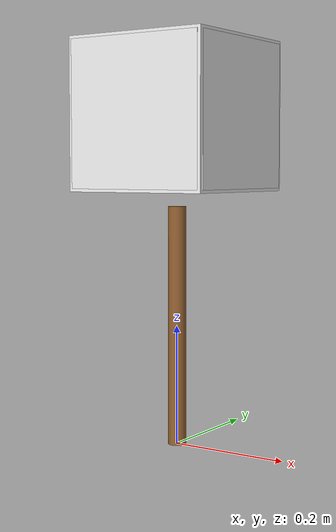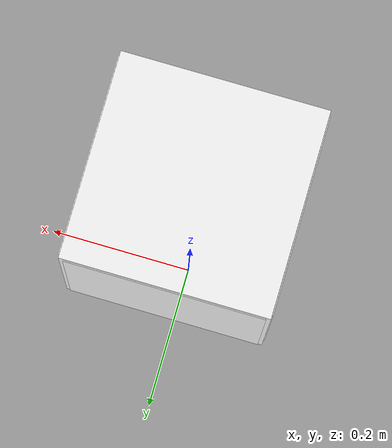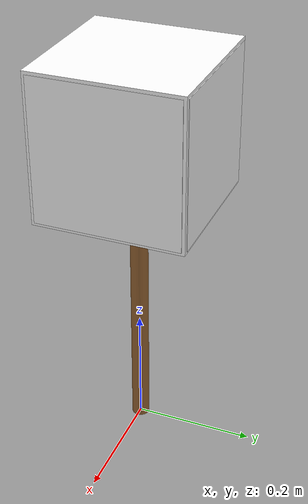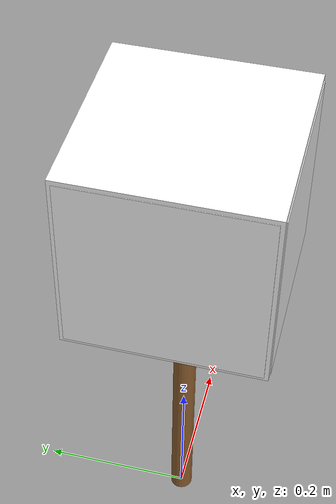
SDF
<?xml version="1.0"?>
<sdf version="1.6">
  <model name="aruco_marker_7">
    <static>true</static>
    <link name="link">

      <!-- عصاية -->
      <visual name="pole">
        <pose>0 0 0.2 0 0 0</pose>
        <geometry>
          <cylinder>
            <radius>0.015</radius>
            <length>0.4</length>
          </cylinder>
        </geometry>
        <material>
          <ambient>0.6 0.4 0.2 1</ambient>
          <diffuse>0.6 0.4 0.2 1</diffuse>
        </material>
      </visual>

      <!-- البوكس الأبيض -->
      <visual name="box">
        <pose>0 0 0.55 0 0 0</pose>
        <geometry>
          <box>
            <size>0.25 0.25 0.25</size>
          </box>
        </geometry>
        <material>
          <ambient>1 1 1 1</ambient>
          <diffuse>1 1 1 1</diffuse>
        </material>
      </visual>

      <!-- وجه أمامي +Y -->
      <visual name="face_front">
        <pose>0 -0.126 0.55 0 0 0</pose>
        <geometry><box><size>0.24 0.001 0.24</size></box></geometry>
        <material>
          <diffuse>1 1 1 1</diffuse>
          <pbr><metal>
            <albedo_map>model://aruco_marker_7/meshes/marker_7.png</albedo_map>
          </metal></pbr>
        </material>
      </visual>

      <!-- وجه خلفي -Y -->
      <visual name="face_back">
        <pose>0 0.126 0.55 0 0 3.14159</pose>
        <geometry><box><size>0.24 0.001 0.24</size></box></geometry>
        <material>
          <diffuse>1 1 1 1</diffuse>
          <pbr><metal>
            <albedo_map>model://aruco_marker_7/meshes/marker_7.png</albedo_map>
          </metal></pbr>
        </material>
      </visual>

      <!-- وجه يمين +X -->
      <visual name="face_right">
        <pose>0.126 0 0.55 0 0 1.5708</pose>
        <geometry><box><size>0.24 0.001 0.24</size></box></geometry>
        <material>
          <diffuse>1 1 1 1</diffuse>
          <pbr><metal>
            <albedo_map>model://aruco_marker_7/meshes/marker_7.png</albedo_map>
          </metal></pbr>
        </material>
      </visual>

      <!-- وجه شمال -X -->
      <visual name="face_left">
        <pose>-0.126 0 0.55 0 0 -1.5708</pose>
        <geometry><box><size>0.24 0.001 0.24</size></box></geometry>
        <material>
          <diffuse>1 1 1 1</diffuse>
          <pbr><metal>
            <albedo_map>model://aruco_marker_7/meshes/marker_7.png</albedo_map>
          </metal></pbr>
        </material>
      </visual>

    </link>
  </model>
</sdf>
